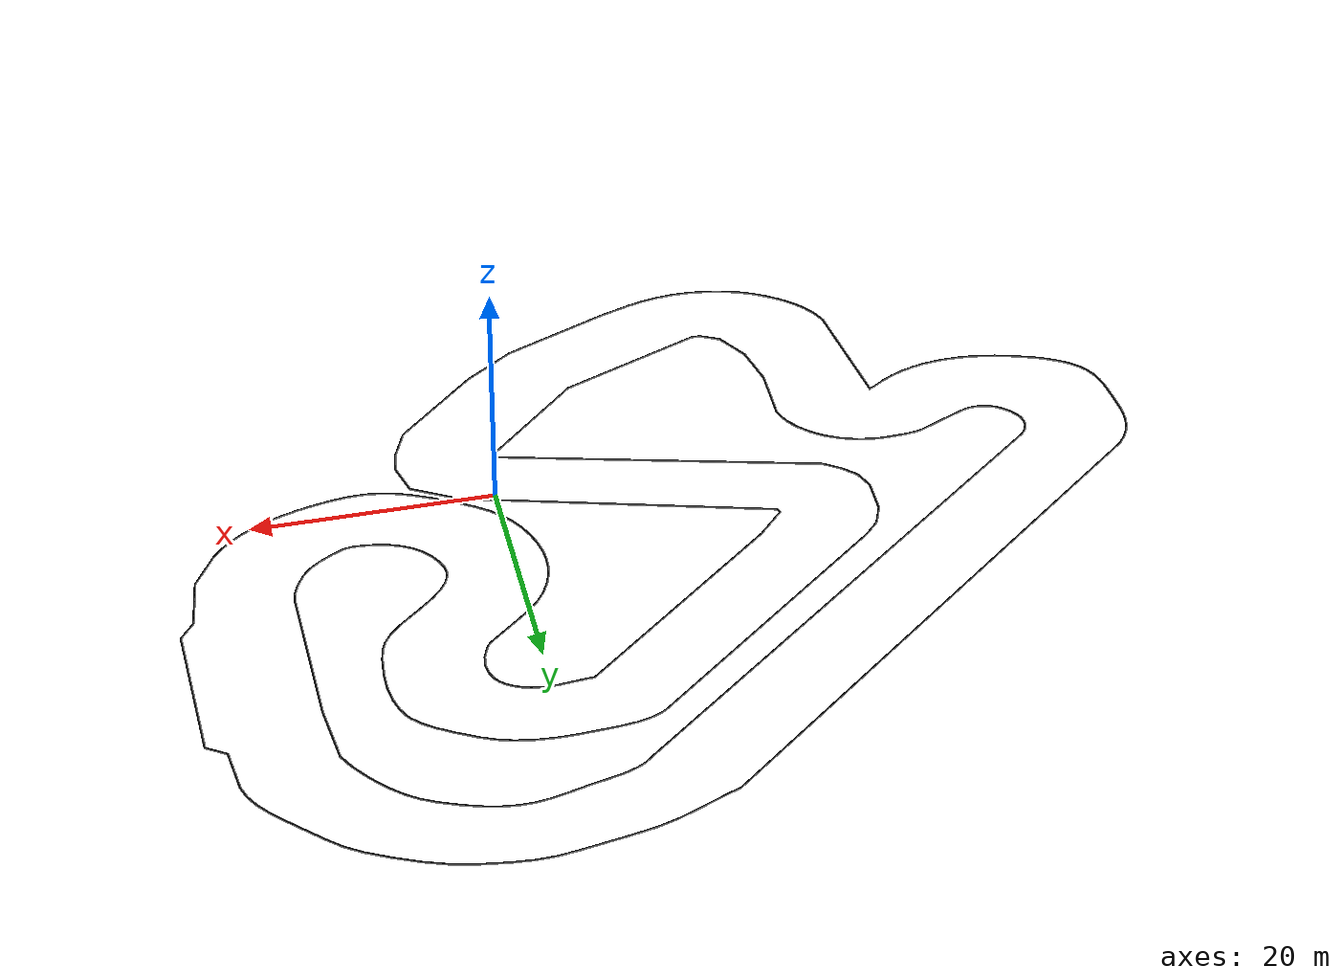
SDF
<?xml version="1.0"?>
<sdf version="1.5">
  <model name="track">
    <static>true</static>
    <pose> -64 39 -12 3.14159 0 0</pose>
    <link name="link">
      <visual name="visual">
        <cast_shadows>false</cast_shadows>
        <geometry>
          <mesh>
            <uri>model://urdf/cad/RSS_CCRF_2020Mapv2.1.dae</uri>
            <scale>0.001 0.00075 0.0009</scale>
          </mesh>
        </geometry>
        <material>
          <script>
            <uri>model://urdf/gazebo.material</uri>
            <name>Gazebo/Black</name>
          </script>
        </material>
      </visual>
    </link>
  </model>
</sdf>
